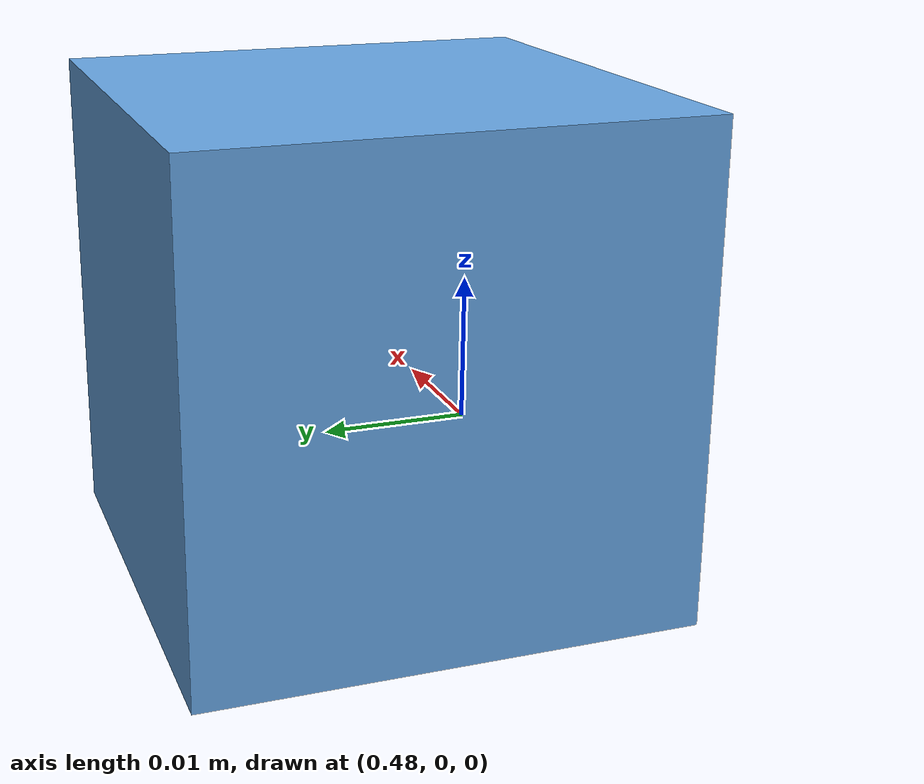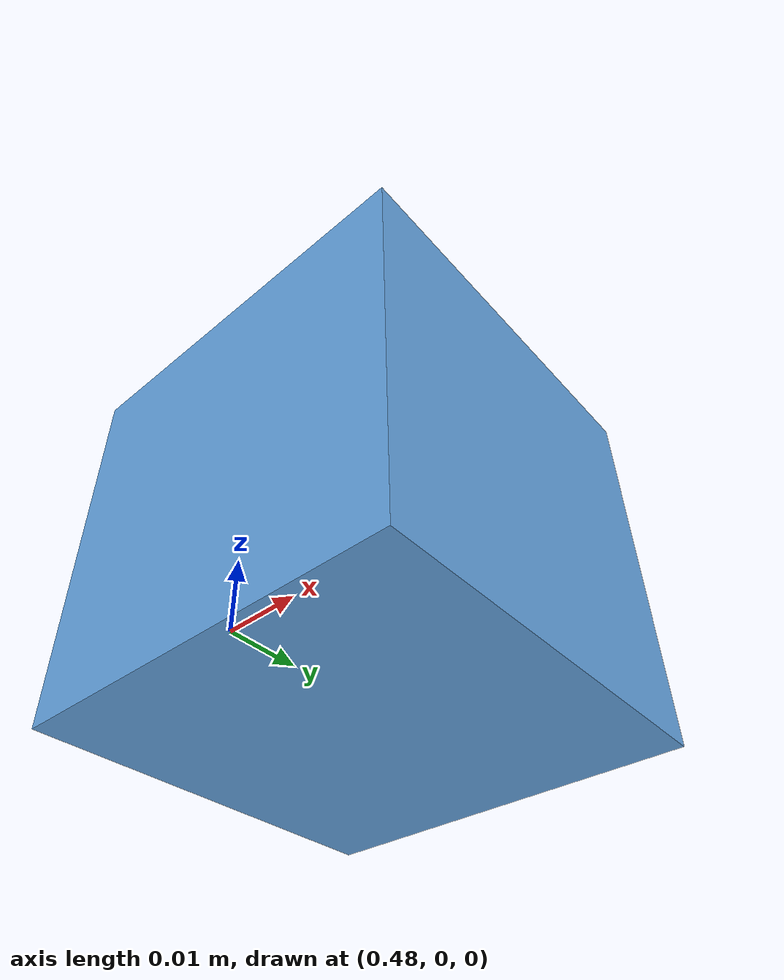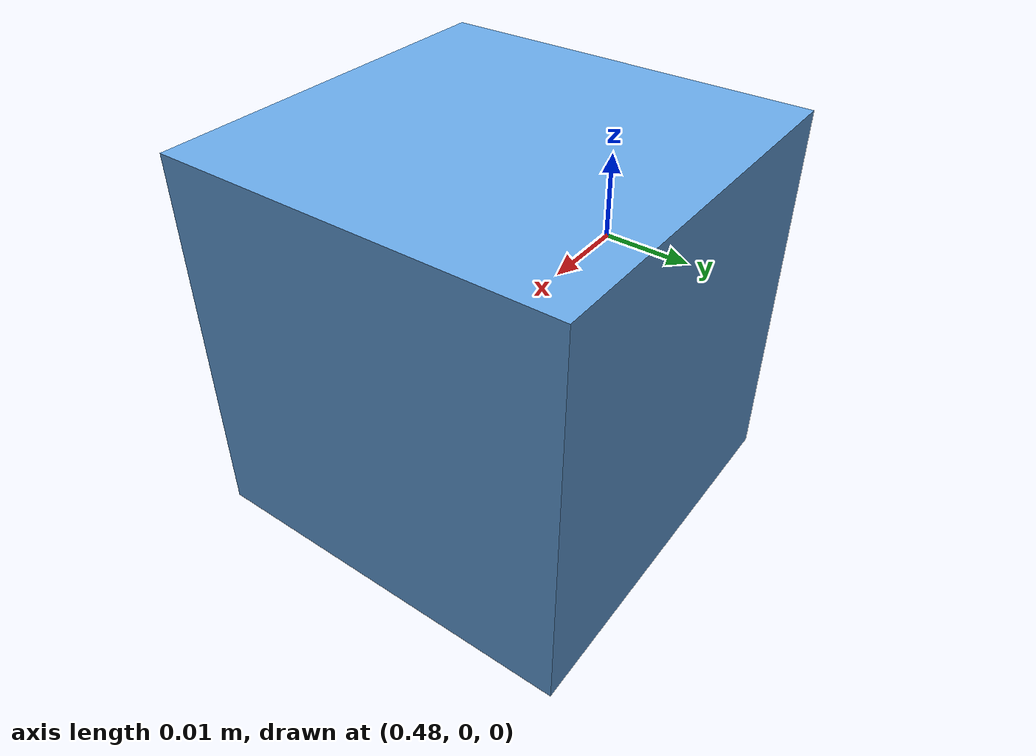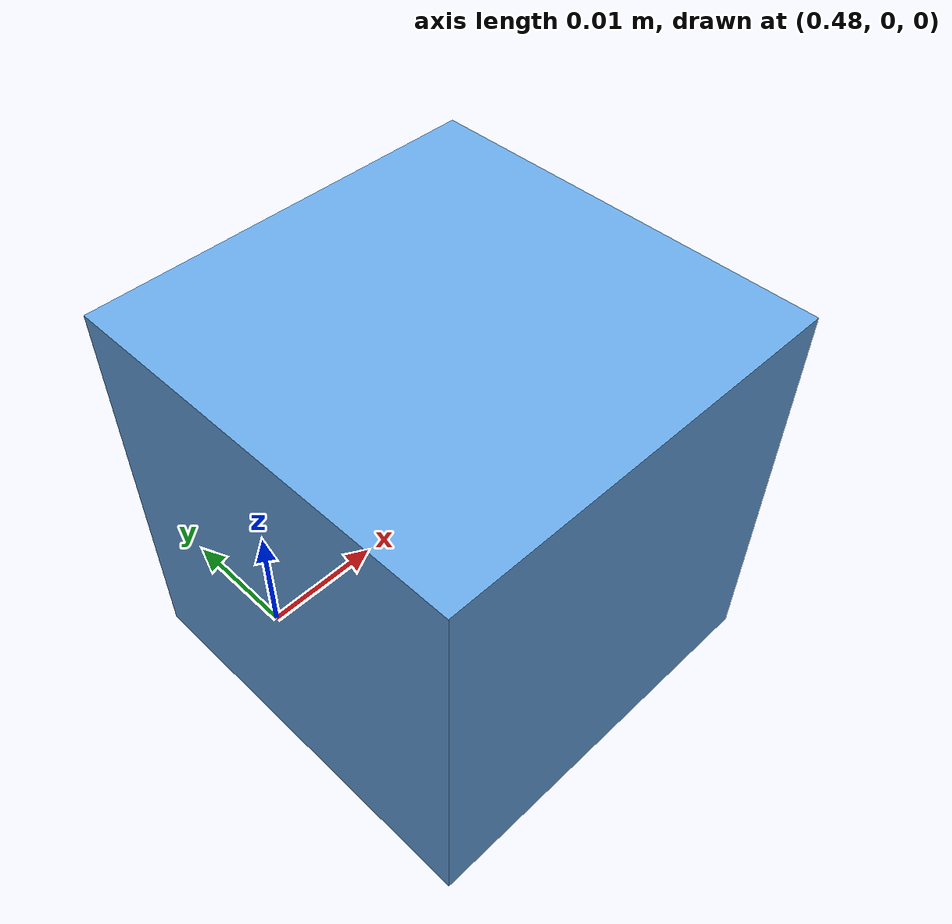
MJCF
<mujoco model="cubic_with_sites">
  <worldbody>
     <body name="cubic_with_sites" pos="0.5 0.0 0.0" quat="0 0 0 0">
         <joint damping="0.01" name="cubic_with_sites:joint" type="free" />
         <inertial diaginertia="3 3 3" mass=".1" pos="0 0 0 " />
         <geom conaffinity="3" contype="3" density="0" name="cubic_with_sites:geom1" pos="0 0 0" rgba="0.4 0.65 0.89 1" size="0.02 0.02 0.02" type="box" />
     </body>
  </worldbody>
</mujoco>
